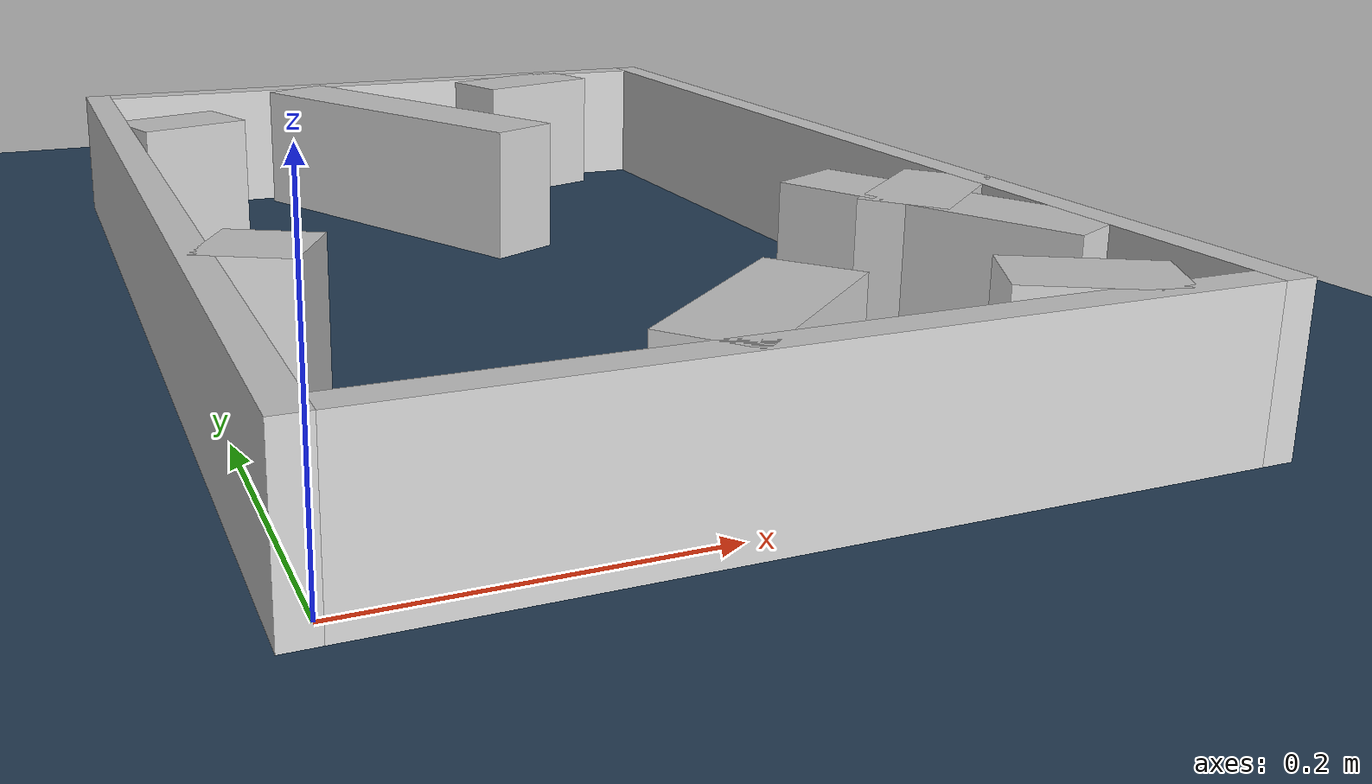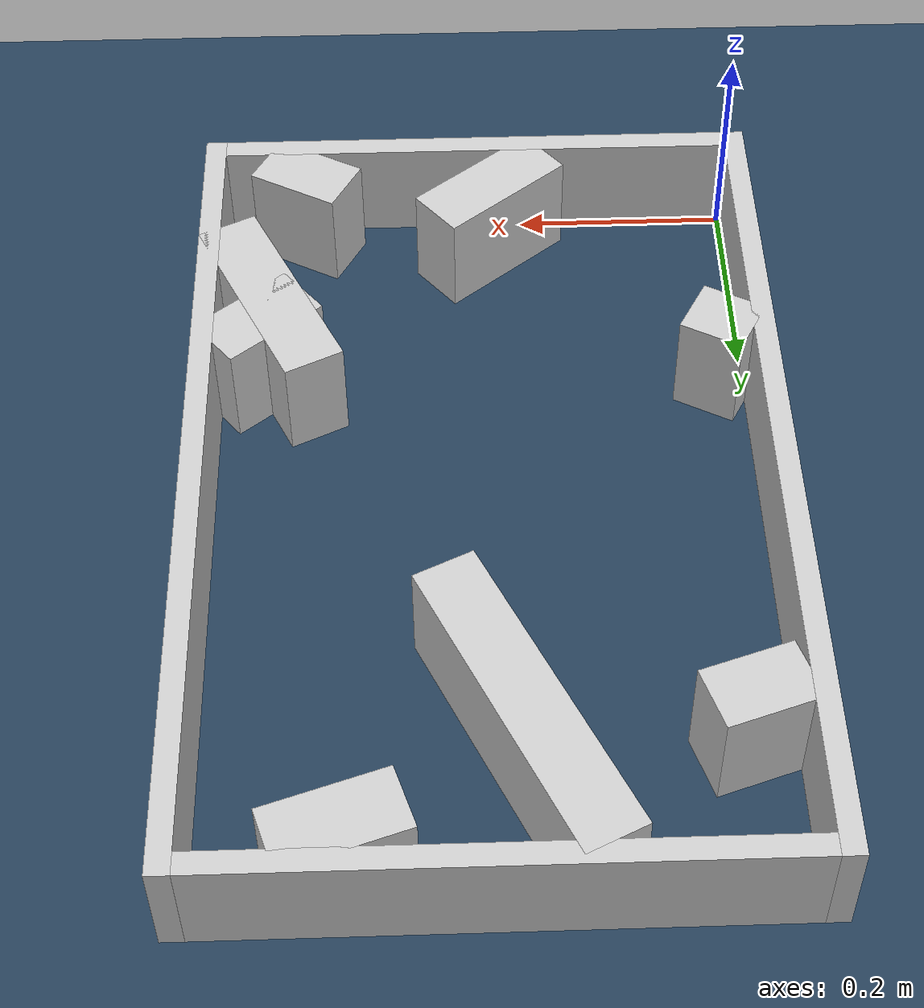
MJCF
<?xml version="1.0" ?>
<mujoco model="generated_real_template">
  <compiler angle="degree"/>
  <option timestep="0.002" integrator="implicitfast" iterations="100" cone="elliptic"/>
  <default>
    <geom density="1"/>
  </default>
  <asset>
    <texture builtin="gradient" height="3072" rgb1="0.3 0.5 0.7" rgb2="0 0 0" type="skybox" width="512"/>
    <texture builtin="checker" height="300" mark="edge" markrgb="0.8 0.8 0.8" name="groundplane" rgb1="0.2 0.3 0.4" rgb2="0.1 0.2 0.3" type="2d" width="300"/>
    <material name="groundplane" reflectance="0.2" texrepeat="5 5" texture="groundplane" texuniform="true"/>
  </asset>
  <worldbody>
    <light dir="0 0 -1" directional="true" pos="0 0 1.5"/>
    <geom name="floor" type="plane" condim="4" friction="0.5 0.005 0.001" material="groundplane" size="0 0 0.05"/>
    <body name="walls">
      <geom name="wall_boundary_left" type="box" condim="4" friction="1.0 0.005 0.0001" rgba="0.8 0.8 0.8 1" pos="-0.010000 0.387500 0.050000" euler="0 0 0.000000" size="0.010000 0.407500 0.050000"/>
      <geom name="wall_boundary_right" type="box" condim="4" friction="1.0 0.005 0.0001" rgba="0.8 0.8 0.8 1" pos="0.500000 0.387500 0.050000" euler="0 0 0.000000" size="0.010000 0.407500 0.050000"/>
      <geom name="wall_boundary_bottom" type="box" condim="4" friction="1.0 0.005 0.0001" rgba="0.8 0.8 0.8 1" pos="0.245000 -0.010000 0.050000" euler="0 0 0.000000" size="0.245000 0.010000 0.050000"/>
      <geom name="wall_boundary_top" type="box" condim="4" friction="1.0 0.005 0.0001" rgba="0.8 0.8 0.8 1" pos="0.245000 0.785000 0.050000" euler="0 0 0.000000" size="0.245000 0.010000 0.050000"/>
      <geom name="wall_inner_1_1" type="box" condim="4" friction="1.0 0.005 0.0001" rgba="0.8 0.8 0.8 1" pos="0.040132 0.640810 0.050000" euler="0 0 18.317655" size="0.042275 0.028500 0.050000"/>
      <geom name="wall_inner_1_2" type="box" condim="4" friction="1.0 0.005 0.0001" rgba="0.8 0.8 0.8 1" pos="0.371576 0.750537 0.050000" euler="0 0 18.317655" size="0.055382 0.028500 0.050000"/>
      <geom name="wall_inner_2_1" type="box" condim="4" friction="1.0 0.005 0.0001" rgba="0.8 0.8 0.8 1" pos="0.449769 0.222404 0.050000" euler="0 0 -140.920772" size="0.051826 0.028500 0.050000"/>
      <geom name="wall_inner_2_2" type="box" condim="4" friction="1.0 0.005 0.0001" rgba="0.8 0.8 0.8 1" pos="0.232664 0.046099 0.050000" euler="0 0 -140.920772" size="0.069756 0.028500 0.050000"/>
      <geom name="wall_inner_3_1" type="box" condim="4" friction="1.0 0.005 0.0001" rgba="0.8 0.8 0.8 1" pos="0.440765 0.191584 0.050000" euler="0 0 115.556187" size="0.100886 0.028500 0.050000"/>
      <geom name="wall_inner_3_2" type="box" condim="4" friction="1.0 0.005 0.0001" rgba="0.8 0.8 0.8 1" pos="0.224311 0.644248 0.050000" euler="0 0 115.556187" size="0.144931 0.028500 0.050000"/>
      <geom name="wall_inner_4_1" type="box" condim="4" friction="1.0 0.005 0.0001" rgba="0.8 0.8 0.8 1" pos="0.410887 0.026598 0.050000" euler="0 0 151.380830" size="0.045052 0.028500 0.050000"/>
      <geom name="wall_inner_4_2" type="box" condim="4" friction="1.0 0.005 0.0001" rgba="0.8 0.8 0.8 1" pos="0.026643 0.236262 0.050000" euler="0 0 151.380830" size="0.030351 0.028500 0.050000"/>
    </body>
  </worldbody>
</mujoco>
